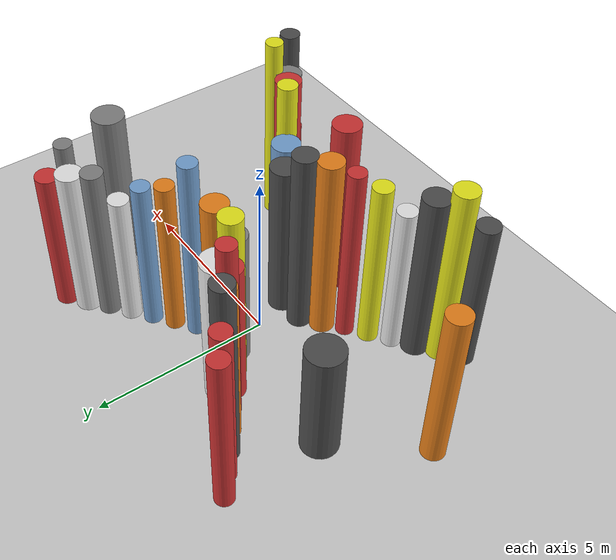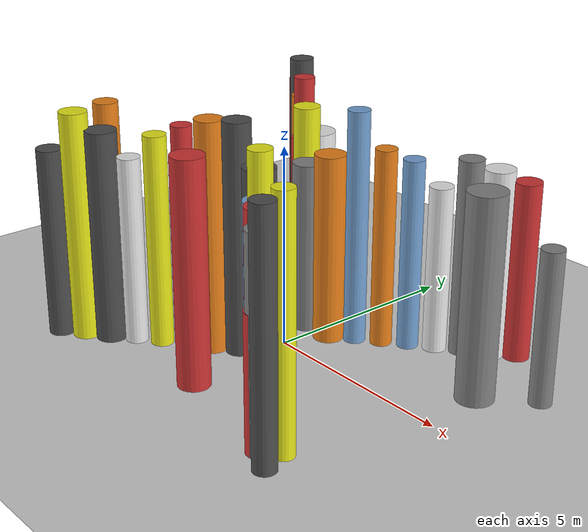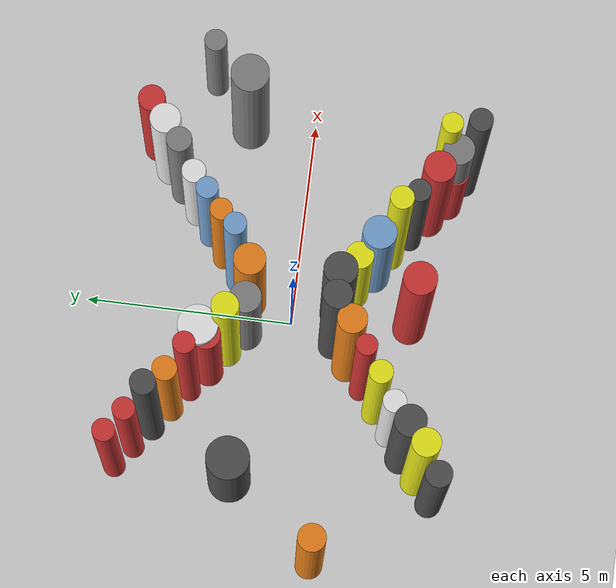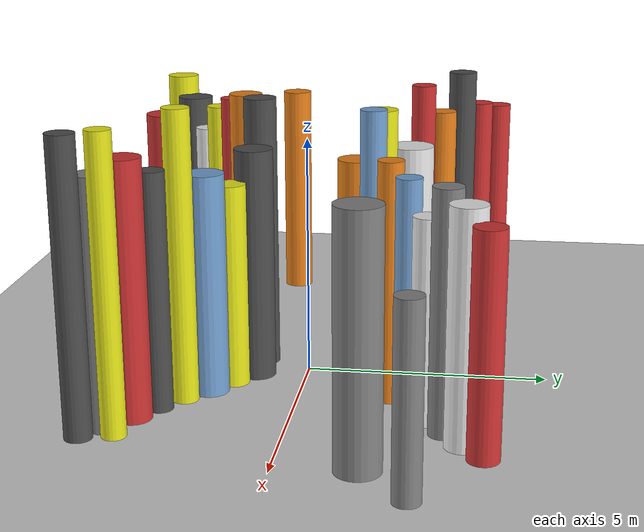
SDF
<?xml version='1.0'?>
<sdf version='1.6'>
  <world name='routeA_rl_v1__dense_recovery__rl_test__bottleneck_corridor__000031'>
    <!-- Sun light -->
    <light name='sun' type='directional'>
      <cast_shadows>1</cast_shadows>
      <pose>0 0 10 0 0 0</pose>
      <diffuse>0.8 0.8 0.8 1</diffuse>
      <specular>0.2 0.2 0.2 1</specular>
      <attenuation>
        <range>1000</range>
        <constant>0.9</constant>
        <linear>0.01</linear>
        <quadratic>0.001</quadratic>
      </attenuation>
      <direction>-0.5 0.1 -0.9</direction>
    </light>

    <!-- Ground plane -->
    <model name='ground_plane'>
      <static>1</static>
      <link name='link'>
        <collision name='collision'>
          <geometry>
            <plane>
              <normal>0 0 1</normal>
              <size>100 100</size>
            </plane>
          </geometry>
          <surface>
            <contact>
              <collide_bitmask>65535</collide_bitmask>
              <ode/>
            </contact>
            <friction>
              <ode>
                <mu>100</mu>
                <mu2>50</mu2>
              </ode>
              <torsional><ode/></torsional>
            </friction>
            <bounce/>
          </surface>
          <max_contacts>10</max_contacts>
        </collision>
        <visual name='visual'>
          <cast_shadows>0</cast_shadows>
          <geometry>
            <plane>
              <normal>0 0 1</normal>
              <size>100 100</size>
            </plane>
          </geometry>
          <material>
            <script>
              <uri>file://media/materials/scripts/gazebo.material</uri>
              <n>Gazebo/Grey</n>
            </script>
          </material>
        </visual>
      </link>
    </model>

    <!-- Environment -->
    <magnetic_field>6e-06 2.3e-05 -4.2e-05</magnetic_field>
    <atmosphere type='adiabatic'/>
    <physics name='default_physics' default='0' type='ode'>
      <gravity>0 0 -9.8</gravity>
      <max_step_size>0.004</max_step_size>
      <real_time_factor>1</real_time_factor>
      <real_time_update_rate>250</real_time_update_rate>
    </physics>
    <scene>
      <ambient>0.4 0.4 0.4 1</ambient>
      <background>0.7 0.7 0.7 1</background>
      <shadows>1</shadows>
    </scene>
    <wind/>
    <spherical_coordinates>
      <surface_model>EARTH_WGS84</surface_model>
      <latitude_deg>0</latitude_deg>
      <longitude_deg>0</longitude_deg>
      <elevation>0</elevation>
      <heading_deg>0</heading_deg>
    </spherical_coordinates>

    <!-- ============ OBSTACLES (40) ============ -->
    <model name='funnel_l_0'>
      <static>1</static>
      <link name='link'>
        <visual name='visual'>
          <geometry>
            <cylinder>
              <radius>0.3173</radius>
              <length>4.7368</length>
            </cylinder>
          </geometry>
          <material>
            <script>
              <n>Gazebo/DarkGrey</n>
              <uri>file://media/materials/scripts/gazebo.material</uri>
            </script>
            <ambient>0.3 0.3 0.3 1</ambient>
          </material>
        </visual>
        <collision name='collision'>
          <geometry>
            <cylinder>
              <radius>0.3173</radius>
              <length>4.7368</length>
            </cylinder>
          </geometry>
          <max_contacts>10</max_contacts>
          <surface>
            <contact><ode/></contact>
            <bounce/>
            <friction>
              <ode><mu>1</mu><mu2>1</mu2></ode>
              <torsional><ode/></torsional>
            </friction>
          </surface>
        </collision>
      </link>
      <pose>-4.0000 -3.8000 2.3684 0 0 0.0000</pose>
    </model>

    <model name='funnel_r_0'>
      <static>1</static>
      <link name='link'>
        <visual name='visual'>
          <geometry>
            <cylinder>
              <radius>0.2687</radius>
              <length>5.0687</length>
            </cylinder>
          </geometry>
          <material>
            <script>
              <n>Gazebo/Red</n>
              <uri>file://media/materials/scripts/gazebo.material</uri>
            </script>
            <ambient>0.8 0.2 0.2 1</ambient>
          </material>
        </visual>
        <collision name='collision'>
          <geometry>
            <cylinder>
              <radius>0.2687</radius>
              <length>5.0687</length>
            </cylinder>
          </geometry>
          <max_contacts>10</max_contacts>
          <surface>
            <contact><ode/></contact>
            <bounce/>
            <friction>
              <ode><mu>1</mu><mu2>1</mu2></ode>
              <torsional><ode/></torsional>
            </friction>
          </surface>
        </collision>
      </link>
      <pose>-4.0000 3.8000 2.5344 0 0 0.0000</pose>
    </model>

    <model name='funnel_l_1'>
      <static>1</static>
      <link name='link'>
        <visual name='visual'>
          <geometry>
            <cylinder>
              <radius>0.3373</radius>
              <length>5.6789</length>
            </cylinder>
          </geometry>
          <material>
            <script>
              <n>Gazebo/Yellow</n>
              <uri>file://media/materials/scripts/gazebo.material</uri>
            </script>
            <ambient>0.9 0.9 0.1 1</ambient>
          </material>
        </visual>
        <collision name='collision'>
          <geometry>
            <cylinder>
              <radius>0.3373</radius>
              <length>5.6789</length>
            </cylinder>
          </geometry>
          <max_contacts>10</max_contacts>
          <surface>
            <contact><ode/></contact>
            <bounce/>
            <friction>
              <ode><mu>1</mu><mu2>1</mu2></ode>
              <torsional><ode/></torsional>
            </friction>
          </surface>
        </collision>
      </link>
      <pose>-3.4857 -3.4071 2.8394 0 0 0.0000</pose>
    </model>

    <model name='funnel_r_1'>
      <static>1</static>
      <link name='link'>
        <visual name='visual'>
          <geometry>
            <cylinder>
              <radius>0.2662</radius>
              <length>5.1972</length>
            </cylinder>
          </geometry>
          <material>
            <script>
              <n>Gazebo/Red</n>
              <uri>file://media/materials/scripts/gazebo.material</uri>
            </script>
            <ambient>0.8 0.2 0.2 1</ambient>
          </material>
        </visual>
        <collision name='collision'>
          <geometry>
            <cylinder>
              <radius>0.2662</radius>
              <length>5.1972</length>
            </cylinder>
          </geometry>
          <max_contacts>10</max_contacts>
          <surface>
            <contact><ode/></contact>
            <bounce/>
            <friction>
              <ode><mu>1</mu><mu2>1</mu2></ode>
              <torsional><ode/></torsional>
            </friction>
          </surface>
        </collision>
      </link>
      <pose>-3.4857 3.4071 2.5986 0 0 0.0000</pose>
    </model>

    <model name='funnel_l_2'>
      <static>1</static>
      <link name='link'>
        <visual name='visual'>
          <geometry>
            <cylinder>
              <radius>0.3778</radius>
              <length>5.2815</length>
            </cylinder>
          </geometry>
          <material>
            <script>
              <n>Gazebo/DarkGrey</n>
              <uri>file://media/materials/scripts/gazebo.material</uri>
            </script>
            <ambient>0.3 0.3 0.3 1</ambient>
          </material>
        </visual>
        <collision name='collision'>
          <geometry>
            <cylinder>
              <radius>0.3778</radius>
              <length>5.2815</length>
            </cylinder>
          </geometry>
          <max_contacts>10</max_contacts>
          <surface>
            <contact><ode/></contact>
            <bounce/>
            <friction>
              <ode><mu>1</mu><mu2>1</mu2></ode>
              <torsional><ode/></torsional>
            </friction>
          </surface>
        </collision>
      </link>
      <pose>-2.9714 -3.0143 2.6408 0 0 0.0000</pose>
    </model>

    <model name='funnel_r_2'>
      <static>1</static>
      <link name='link'>
        <visual name='visual'>
          <geometry>
            <cylinder>
              <radius>0.2979</radius>
              <length>5.9547</length>
            </cylinder>
          </geometry>
          <material>
            <script>
              <n>Gazebo/DarkGrey</n>
              <uri>file://media/materials/scripts/gazebo.material</uri>
            </script>
            <ambient>0.3 0.3 0.3 1</ambient>
          </material>
        </visual>
        <collision name='collision'>
          <geometry>
            <cylinder>
              <radius>0.2979</radius>
              <length>5.9547</length>
            </cylinder>
          </geometry>
          <max_contacts>10</max_contacts>
          <surface>
            <contact><ode/></contact>
            <bounce/>
            <friction>
              <ode><mu>1</mu><mu2>1</mu2></ode>
              <torsional><ode/></torsional>
            </friction>
          </surface>
        </collision>
      </link>
      <pose>-2.9714 3.0143 2.9774 0 0 0.0000</pose>
    </model>

    <model name='funnel_l_3'>
      <static>1</static>
      <link name='link'>
        <visual name='visual'>
          <geometry>
            <cylinder>
              <radius>0.2755</radius>
              <length>4.6837</length>
            </cylinder>
          </geometry>
          <material>
            <script>
              <n>Gazebo/White</n>
              <uri>file://media/materials/scripts/gazebo.material</uri>
            </script>
            <ambient>0.9 0.9 0.9 1</ambient>
          </material>
        </visual>
        <collision name='collision'>
          <geometry>
            <cylinder>
              <radius>0.2755</radius>
              <length>4.6837</length>
            </cylinder>
          </geometry>
          <max_contacts>10</max_contacts>
          <surface>
            <contact><ode/></contact>
            <bounce/>
            <friction>
              <ode><mu>1</mu><mu2>1</mu2></ode>
              <torsional><ode/></torsional>
            </friction>
          </surface>
        </collision>
      </link>
      <pose>-2.4571 -2.6214 2.3418 0 0 0.0000</pose>
    </model>

    <model name='funnel_r_3'>
      <static>1</static>
      <link name='link'>
        <visual name='visual'>
          <geometry>
            <cylinder>
              <radius>0.2898</radius>
              <length>5.1768</length>
            </cylinder>
          </geometry>
          <material>
            <script>
              <n>Gazebo/Orange</n>
              <uri>file://media/materials/scripts/gazebo.material</uri>
            </script>
            <ambient>0.9 0.5 0.1 1</ambient>
          </material>
        </visual>
        <collision name='collision'>
          <geometry>
            <cylinder>
              <radius>0.2898</radius>
              <length>5.1768</length>
            </cylinder>
          </geometry>
          <max_contacts>10</max_contacts>
          <surface>
            <contact><ode/></contact>
            <bounce/>
            <friction>
              <ode><mu>1</mu><mu2>1</mu2></ode>
              <torsional><ode/></torsional>
            </friction>
          </surface>
        </collision>
      </link>
      <pose>-2.4571 2.6214 2.5884 0 0 0.0000</pose>
    </model>

    <model name='funnel_l_4'>
      <static>1</static>
      <link name='link'>
        <visual name='visual'>
          <geometry>
            <cylinder>
              <radius>0.2788</radius>
              <length>5.2720</length>
            </cylinder>
          </geometry>
          <material>
            <script>
              <n>Gazebo/Yellow</n>
              <uri>file://media/materials/scripts/gazebo.material</uri>
            </script>
            <ambient>0.9 0.9 0.1 1</ambient>
          </material>
        </visual>
        <collision name='collision'>
          <geometry>
            <cylinder>
              <radius>0.2788</radius>
              <length>5.2720</length>
            </cylinder>
          </geometry>
          <max_contacts>10</max_contacts>
          <surface>
            <contact><ode/></contact>
            <bounce/>
            <friction>
              <ode><mu>1</mu><mu2>1</mu2></ode>
              <torsional><ode/></torsional>
            </friction>
          </surface>
        </collision>
      </link>
      <pose>-1.9429 -2.2286 2.6360 0 0 0.0000</pose>
    </model>

    <model name='funnel_r_4'>
      <static>1</static>
      <link name='link'>
        <visual name='visual'>
          <geometry>
            <cylinder>
              <radius>0.2578</radius>
              <length>5.8225</length>
            </cylinder>
          </geometry>
          <material>
            <script>
              <n>Gazebo/Red</n>
              <uri>file://media/materials/scripts/gazebo.material</uri>
            </script>
            <ambient>0.8 0.2 0.2 1</ambient>
          </material>
        </visual>
        <collision name='collision'>
          <geometry>
            <cylinder>
              <radius>0.2578</radius>
              <length>5.8225</length>
            </cylinder>
          </geometry>
          <max_contacts>10</max_contacts>
          <surface>
            <contact><ode/></contact>
            <bounce/>
            <friction>
              <ode><mu>1</mu><mu2>1</mu2></ode>
              <torsional><ode/></torsional>
            </friction>
          </surface>
        </collision>
      </link>
      <pose>-1.9429 2.2286 2.9113 0 0 0.0000</pose>
    </model>

    <model name='funnel_l_5'>
      <static>1</static>
      <link name='link'>
        <visual name='visual'>
          <geometry>
            <cylinder>
              <radius>0.2502</radius>
              <length>5.5478</length>
            </cylinder>
          </geometry>
          <material>
            <script>
              <n>Gazebo/Red</n>
              <uri>file://media/materials/scripts/gazebo.material</uri>
            </script>
            <ambient>0.8 0.2 0.2 1</ambient>
          </material>
        </visual>
        <collision name='collision'>
          <geometry>
            <cylinder>
              <radius>0.2502</radius>
              <length>5.5478</length>
            </cylinder>
          </geometry>
          <max_contacts>10</max_contacts>
          <surface>
            <contact><ode/></contact>
            <bounce/>
            <friction>
              <ode><mu>1</mu><mu2>1</mu2></ode>
              <torsional><ode/></torsional>
            </friction>
          </surface>
        </collision>
      </link>
      <pose>-1.4286 -1.8357 2.7739 0 0 0.0000</pose>
    </model>

    <model name='funnel_r_5'>
      <static>1</static>
      <link name='link'>
        <visual name='visual'>
          <geometry>
            <cylinder>
              <radius>0.3490</radius>
              <length>4.4925</length>
            </cylinder>
          </geometry>
          <material>
            <script>
              <n>Gazebo/Red</n>
              <uri>file://media/materials/scripts/gazebo.material</uri>
            </script>
            <ambient>0.8 0.2 0.2 1</ambient>
          </material>
        </visual>
        <collision name='collision'>
          <geometry>
            <cylinder>
              <radius>0.3490</radius>
              <length>4.4925</length>
            </cylinder>
          </geometry>
          <max_contacts>10</max_contacts>
          <surface>
            <contact><ode/></contact>
            <bounce/>
            <friction>
              <ode><mu>1</mu><mu2>1</mu2></ode>
              <torsional><ode/></torsional>
            </friction>
          </surface>
        </collision>
      </link>
      <pose>-1.4286 1.8357 2.2462 0 0 0.0000</pose>
    </model>

    <model name='funnel_l_6'>
      <static>1</static>
      <link name='link'>
        <visual name='visual'>
          <geometry>
            <cylinder>
              <radius>0.3455</radius>
              <length>5.7369</length>
            </cylinder>
          </geometry>
          <material>
            <script>
              <n>Gazebo/Orange</n>
              <uri>file://media/materials/scripts/gazebo.material</uri>
            </script>
            <ambient>0.9 0.5 0.1 1</ambient>
          </material>
        </visual>
        <collision name='collision'>
          <geometry>
            <cylinder>
              <radius>0.3455</radius>
              <length>5.7369</length>
            </cylinder>
          </geometry>
          <max_contacts>10</max_contacts>
          <surface>
            <contact><ode/></contact>
            <bounce/>
            <friction>
              <ode><mu>1</mu><mu2>1</mu2></ode>
              <torsional><ode/></torsional>
            </friction>
          </surface>
        </collision>
      </link>
      <pose>-0.9143 -1.4429 2.8684 0 0 0.0000</pose>
    </model>

    <model name='funnel_r_6'>
      <static>1</static>
      <link name='link'>
        <visual name='visual'>
          <geometry>
            <cylinder>
              <radius>0.3223</radius>
              <length>5.4712</length>
            </cylinder>
          </geometry>
          <material>
            <script>
              <n>Gazebo/Yellow</n>
              <uri>file://media/materials/scripts/gazebo.material</uri>
            </script>
            <ambient>0.9 0.9 0.1 1</ambient>
          </material>
        </visual>
        <collision name='collision'>
          <geometry>
            <cylinder>
              <radius>0.3223</radius>
              <length>5.4712</length>
            </cylinder>
          </geometry>
          <max_contacts>10</max_contacts>
          <surface>
            <contact><ode/></contact>
            <bounce/>
            <friction>
              <ode><mu>1</mu><mu2>1</mu2></ode>
              <torsional><ode/></torsional>
            </friction>
          </surface>
        </collision>
      </link>
      <pose>-0.9143 1.4429 2.7356 0 0 0.0000</pose>
    </model>

    <model name='funnel_l_7'>
      <static>1</static>
      <link name='link'>
        <visual name='visual'>
          <geometry>
            <cylinder>
              <radius>0.3419</radius>
              <length>5.7578</length>
            </cylinder>
          </geometry>
          <material>
            <script>
              <n>Gazebo/DarkGrey</n>
              <uri>file://media/materials/scripts/gazebo.material</uri>
            </script>
            <ambient>0.3 0.3 0.3 1</ambient>
          </material>
        </visual>
        <collision name='collision'>
          <geometry>
            <cylinder>
              <radius>0.3419</radius>
              <length>5.7578</length>
            </cylinder>
          </geometry>
          <max_contacts>10</max_contacts>
          <surface>
            <contact><ode/></contact>
            <bounce/>
            <friction>
              <ode><mu>1</mu><mu2>1</mu2></ode>
              <torsional><ode/></torsional>
            </friction>
          </surface>
        </collision>
      </link>
      <pose>-0.4000 -1.0500 2.8789 0 0 0.0000</pose>
    </model>

    <model name='funnel_r_7'>
      <static>1</static>
      <link name='link'>
        <visual name='visual'>
          <geometry>
            <cylinder>
              <radius>0.3776</radius>
              <length>4.2890</length>
            </cylinder>
          </geometry>
          <material>
            <script>
              <n>Gazebo/Grey</n>
              <uri>file://media/materials/scripts/gazebo.material</uri>
            </script>
            <ambient>0.5 0.5 0.5 1</ambient>
          </material>
        </visual>
        <collision name='collision'>
          <geometry>
            <cylinder>
              <radius>0.3776</radius>
              <length>4.2890</length>
            </cylinder>
          </geometry>
          <max_contacts>10</max_contacts>
          <surface>
            <contact><ode/></contact>
            <bounce/>
            <friction>
              <ode><mu>1</mu><mu2>1</mu2></ode>
              <torsional><ode/></torsional>
            </friction>
          </surface>
        </collision>
      </link>
      <pose>-0.4000 1.0500 2.1445 0 0 0.0000</pose>
    </model>

    <model name='funnel_out_l_0'>
      <static>1</static>
      <link name='link'>
        <visual name='visual'>
          <geometry>
            <cylinder>
              <radius>0.3969</radius>
              <length>4.8648</length>
            </cylinder>
          </geometry>
          <material>
            <script>
              <n>Gazebo/DarkGrey</n>
              <uri>file://media/materials/scripts/gazebo.material</uri>
            </script>
            <ambient>0.3 0.3 0.3 1</ambient>
          </material>
        </visual>
        <collision name='collision'>
          <geometry>
            <cylinder>
              <radius>0.3969</radius>
              <length>4.8648</length>
            </cylinder>
          </geometry>
          <max_contacts>10</max_contacts>
          <surface>
            <contact><ode/></contact>
            <bounce/>
            <friction>
              <ode><mu>1</mu><mu2>1</mu2></ode>
              <torsional><ode/></torsional>
            </friction>
          </surface>
        </collision>
      </link>
      <pose>0.4000 -1.0500 2.4324 0 0 0.0000</pose>
    </model>

    <model name='funnel_out_r_0'>
      <static>1</static>
      <link name='link'>
        <visual name='visual'>
          <geometry>
            <cylinder>
              <radius>0.3787</radius>
              <length>4.7091</length>
            </cylinder>
          </geometry>
          <material>
            <script>
              <n>Gazebo/Orange</n>
              <uri>file://media/materials/scripts/gazebo.material</uri>
            </script>
            <ambient>0.9 0.5 0.1 1</ambient>
          </material>
        </visual>
        <collision name='collision'>
          <geometry>
            <cylinder>
              <radius>0.3787</radius>
              <length>4.7091</length>
            </cylinder>
          </geometry>
          <max_contacts>10</max_contacts>
          <surface>
            <contact><ode/></contact>
            <bounce/>
            <friction>
              <ode><mu>1</mu><mu2>1</mu2></ode>
              <torsional><ode/></torsional>
            </friction>
          </surface>
        </collision>
      </link>
      <pose>0.4000 1.0500 2.3546 0 0 0.0000</pose>
    </model>

    <model name='funnel_out_l_1'>
      <static>1</static>
      <link name='link'>
        <visual name='visual'>
          <geometry>
            <cylinder>
              <radius>0.3271</radius>
              <length>4.2446</length>
            </cylinder>
          </geometry>
          <material>
            <script>
              <n>Gazebo/Yellow</n>
              <uri>file://media/materials/scripts/gazebo.material</uri>
            </script>
            <ambient>0.9 0.9 0.1 1</ambient>
          </material>
        </visual>
        <collision name='collision'>
          <geometry>
            <cylinder>
              <radius>0.3271</radius>
              <length>4.2446</length>
            </cylinder>
          </geometry>
          <max_contacts>10</max_contacts>
          <surface>
            <contact><ode/></contact>
            <bounce/>
            <friction>
              <ode><mu>1</mu><mu2>1</mu2></ode>
              <torsional><ode/></torsional>
            </friction>
          </surface>
        </collision>
      </link>
      <pose>0.9143 -1.4429 2.1223 0 0 0.0000</pose>
    </model>

    <model name='funnel_out_r_1'>
      <static>1</static>
      <link name='link'>
        <visual name='visual'>
          <geometry>
            <cylinder>
              <radius>0.2667</radius>
              <length>5.8137</length>
            </cylinder>
          </geometry>
          <material>
            <script>
              <n>Gazebo/Blue</n>
              <uri>file://media/materials/scripts/gazebo.material</uri>
            </script>
            <ambient>0.447 0.624 0.812 1</ambient>
          </material>
        </visual>
        <collision name='collision'>
          <geometry>
            <cylinder>
              <radius>0.2667</radius>
              <length>5.8137</length>
            </cylinder>
          </geometry>
          <max_contacts>10</max_contacts>
          <surface>
            <contact><ode/></contact>
            <bounce/>
            <friction>
              <ode><mu>1</mu><mu2>1</mu2></ode>
              <torsional><ode/></torsional>
            </friction>
          </surface>
        </collision>
      </link>
      <pose>0.9143 1.4429 2.9069 0 0 0.0000</pose>
    </model>

    <model name='funnel_out_l_2'>
      <static>1</static>
      <link name='link'>
        <visual name='visual'>
          <geometry>
            <cylinder>
              <radius>0.3986</radius>
              <length>4.5778</length>
            </cylinder>
          </geometry>
          <material>
            <script>
              <n>Gazebo/Blue</n>
              <uri>file://media/materials/scripts/gazebo.material</uri>
            </script>
            <ambient>0.447 0.624 0.812 1</ambient>
          </material>
        </visual>
        <collision name='collision'>
          <geometry>
            <cylinder>
              <radius>0.3986</radius>
              <length>4.5778</length>
            </cylinder>
          </geometry>
          <max_contacts>10</max_contacts>
          <surface>
            <contact><ode/></contact>
            <bounce/>
            <friction>
              <ode><mu>1</mu><mu2>1</mu2></ode>
              <torsional><ode/></torsional>
            </friction>
          </surface>
        </collision>
      </link>
      <pose>1.4286 -1.8357 2.2889 0 0 0.0000</pose>
    </model>

    <model name='funnel_out_r_2'>
      <static>1</static>
      <link name='link'>
        <visual name='visual'>
          <geometry>
            <cylinder>
              <radius>0.2638</radius>
              <length>4.9398</length>
            </cylinder>
          </geometry>
          <material>
            <script>
              <n>Gazebo/Orange</n>
              <uri>file://media/materials/scripts/gazebo.material</uri>
            </script>
            <ambient>0.9 0.5 0.1 1</ambient>
          </material>
        </visual>
        <collision name='collision'>
          <geometry>
            <cylinder>
              <radius>0.2638</radius>
              <length>4.9398</length>
            </cylinder>
          </geometry>
          <max_contacts>10</max_contacts>
          <surface>
            <contact><ode/></contact>
            <bounce/>
            <friction>
              <ode><mu>1</mu><mu2>1</mu2></ode>
              <torsional><ode/></torsional>
            </friction>
          </surface>
        </collision>
      </link>
      <pose>1.4286 1.8357 2.4699 0 0 0.0000</pose>
    </model>

    <model name='funnel_out_l_3'>
      <static>1</static>
      <link name='link'>
        <visual name='visual'>
          <geometry>
            <cylinder>
              <radius>0.2747</radius>
              <length>5.9616</length>
            </cylinder>
          </geometry>
          <material>
            <script>
              <n>Gazebo/Yellow</n>
              <uri>file://media/materials/scripts/gazebo.material</uri>
            </script>
            <ambient>0.9 0.9 0.1 1</ambient>
          </material>
        </visual>
        <collision name='collision'>
          <geometry>
            <cylinder>
              <radius>0.2747</radius>
              <length>5.9616</length>
            </cylinder>
          </geometry>
          <max_contacts>10</max_contacts>
          <surface>
            <contact><ode/></contact>
            <bounce/>
            <friction>
              <ode><mu>1</mu><mu2>1</mu2></ode>
              <torsional><ode/></torsional>
            </friction>
          </surface>
        </collision>
      </link>
      <pose>1.9429 -2.2286 2.9808 0 0 0.0000</pose>
    </model>

    <model name='funnel_out_r_3'>
      <static>1</static>
      <link name='link'>
        <visual name='visual'>
          <geometry>
            <cylinder>
              <radius>0.2607</radius>
              <length>4.7391</length>
            </cylinder>
          </geometry>
          <material>
            <script>
              <n>Gazebo/Blue</n>
              <uri>file://media/materials/scripts/gazebo.material</uri>
            </script>
            <ambient>0.447 0.624 0.812 1</ambient>
          </material>
        </visual>
        <collision name='collision'>
          <geometry>
            <cylinder>
              <radius>0.2607</radius>
              <length>4.7391</length>
            </cylinder>
          </geometry>
          <max_contacts>10</max_contacts>
          <surface>
            <contact><ode/></contact>
            <bounce/>
            <friction>
              <ode><mu>1</mu><mu2>1</mu2></ode>
              <torsional><ode/></torsional>
            </friction>
          </surface>
        </collision>
      </link>
      <pose>1.9429 2.2286 2.3696 0 0 0.0000</pose>
    </model>

    <model name='funnel_out_l_4'>
      <static>1</static>
      <link name='link'>
        <visual name='visual'>
          <geometry>
            <cylinder>
              <radius>0.2712</radius>
              <length>4.8506</length>
            </cylinder>
          </geometry>
          <material>
            <script>
              <n>Gazebo/DarkGrey</n>
              <uri>file://media/materials/scripts/gazebo.material</uri>
            </script>
            <ambient>0.3 0.3 0.3 1</ambient>
          </material>
        </visual>
        <collision name='collision'>
          <geometry>
            <cylinder>
              <radius>0.2712</radius>
              <length>4.8506</length>
            </cylinder>
          </geometry>
          <max_contacts>10</max_contacts>
          <surface>
            <contact><ode/></contact>
            <bounce/>
            <friction>
              <ode><mu>1</mu><mu2>1</mu2></ode>
              <torsional><ode/></torsional>
            </friction>
          </surface>
        </collision>
      </link>
      <pose>2.4571 -2.6214 2.4253 0 0 0.0000</pose>
    </model>

    <model name='funnel_out_r_4'>
      <static>1</static>
      <link name='link'>
        <visual name='visual'>
          <geometry>
            <cylinder>
              <radius>0.2868</radius>
              <length>4.1407</length>
            </cylinder>
          </geometry>
          <material>
            <script>
              <n>Gazebo/White</n>
              <uri>file://media/materials/scripts/gazebo.material</uri>
            </script>
            <ambient>0.9 0.9 0.9 1</ambient>
          </material>
        </visual>
        <collision name='collision'>
          <geometry>
            <cylinder>
              <radius>0.2868</radius>
              <length>4.1407</length>
            </cylinder>
          </geometry>
          <max_contacts>10</max_contacts>
          <surface>
            <contact><ode/></contact>
            <bounce/>
            <friction>
              <ode><mu>1</mu><mu2>1</mu2></ode>
              <torsional><ode/></torsional>
            </friction>
          </surface>
        </collision>
      </link>
      <pose>2.4571 2.6214 2.0703 0 0 0.0000</pose>
    </model>

    <model name='funnel_out_l_5'>
      <static>1</static>
      <link name='link'>
        <visual name='visual'>
          <geometry>
            <cylinder>
              <radius>0.3737</radius>
              <length>5.2114</length>
            </cylinder>
          </geometry>
          <material>
            <script>
              <n>Gazebo/Red</n>
              <uri>file://media/materials/scripts/gazebo.material</uri>
            </script>
            <ambient>0.8 0.2 0.2 1</ambient>
          </material>
        </visual>
        <collision name='collision'>
          <geometry>
            <cylinder>
              <radius>0.3737</radius>
              <length>5.2114</length>
            </cylinder>
          </geometry>
          <max_contacts>10</max_contacts>
          <surface>
            <contact><ode/></contact>
            <bounce/>
            <friction>
              <ode><mu>1</mu><mu2>1</mu2></ode>
              <torsional><ode/></torsional>
            </friction>
          </surface>
        </collision>
      </link>
      <pose>2.9714 -3.0143 2.6057 0 0 0.0000</pose>
    </model>

    <model name='funnel_out_r_5'>
      <static>1</static>
      <link name='link'>
        <visual name='visual'>
          <geometry>
            <cylinder>
              <radius>0.3012</radius>
              <length>4.8488</length>
            </cylinder>
          </geometry>
          <material>
            <script>
              <n>Gazebo/Grey</n>
              <uri>file://media/materials/scripts/gazebo.material</uri>
            </script>
            <ambient>0.5 0.5 0.5 1</ambient>
          </material>
        </visual>
        <collision name='collision'>
          <geometry>
            <cylinder>
              <radius>0.3012</radius>
              <length>4.8488</length>
            </cylinder>
          </geometry>
          <max_contacts>10</max_contacts>
          <surface>
            <contact><ode/></contact>
            <bounce/>
            <friction>
              <ode><mu>1</mu><mu2>1</mu2></ode>
              <torsional><ode/></torsional>
            </friction>
          </surface>
        </collision>
      </link>
      <pose>2.9714 3.0143 2.4244 0 0 0.0000</pose>
    </model>

    <model name='funnel_out_l_6'>
      <static>1</static>
      <link name='link'>
        <visual name='visual'>
          <geometry>
            <cylinder>
              <radius>0.3664</radius>
              <length>5.0074</length>
            </cylinder>
          </geometry>
          <material>
            <script>
              <n>Gazebo/Grey</n>
              <uri>file://media/materials/scripts/gazebo.material</uri>
            </script>
            <ambient>0.5 0.5 0.5 1</ambient>
          </material>
        </visual>
        <collision name='collision'>
          <geometry>
            <cylinder>
              <radius>0.3664</radius>
              <length>5.0074</length>
            </cylinder>
          </geometry>
          <max_contacts>10</max_contacts>
          <surface>
            <contact><ode/></contact>
            <bounce/>
            <friction>
              <ode><mu>1</mu><mu2>1</mu2></ode>
              <torsional><ode/></torsional>
            </friction>
          </surface>
        </collision>
      </link>
      <pose>3.4857 -3.4071 2.5037 0 0 0.0000</pose>
    </model>

    <model name='funnel_out_r_6'>
      <static>1</static>
      <link name='link'>
        <visual name='visual'>
          <geometry>
            <cylinder>
              <radius>0.3626</radius>
              <length>4.6645</length>
            </cylinder>
          </geometry>
          <material>
            <script>
              <n>Gazebo/White</n>
              <uri>file://media/materials/scripts/gazebo.material</uri>
            </script>
            <ambient>0.9 0.9 0.9 1</ambient>
          </material>
        </visual>
        <collision name='collision'>
          <geometry>
            <cylinder>
              <radius>0.3626</radius>
              <length>4.6645</length>
            </cylinder>
          </geometry>
          <max_contacts>10</max_contacts>
          <surface>
            <contact><ode/></contact>
            <bounce/>
            <friction>
              <ode><mu>1</mu><mu2>1</mu2></ode>
              <torsional><ode/></torsional>
            </friction>
          </surface>
        </collision>
      </link>
      <pose>3.4857 3.4071 2.3322 0 0 0.0000</pose>
    </model>

    <model name='funnel_out_l_7'>
      <static>1</static>
      <link name='link'>
        <visual name='visual'>
          <geometry>
            <cylinder>
              <radius>0.2770</radius>
              <length>5.8492</length>
            </cylinder>
          </geometry>
          <material>
            <script>
              <n>Gazebo/DarkGrey</n>
              <uri>file://media/materials/scripts/gazebo.material</uri>
            </script>
            <ambient>0.3 0.3 0.3 1</ambient>
          </material>
        </visual>
        <collision name='collision'>
          <geometry>
            <cylinder>
              <radius>0.2770</radius>
              <length>5.8492</length>
            </cylinder>
          </geometry>
          <max_contacts>10</max_contacts>
          <surface>
            <contact><ode/></contact>
            <bounce/>
            <friction>
              <ode><mu>1</mu><mu2>1</mu2></ode>
              <torsional><ode/></torsional>
            </friction>
          </surface>
        </collision>
      </link>
      <pose>4.0000 -3.8000 2.9246 0 0 0.0000</pose>
    </model>

    <model name='funnel_out_r_7'>
      <static>1</static>
      <link name='link'>
        <visual name='visual'>
          <geometry>
            <cylinder>
              <radius>0.3180</radius>
              <length>4.4094</length>
            </cylinder>
          </geometry>
          <material>
            <script>
              <n>Gazebo/Red</n>
              <uri>file://media/materials/scripts/gazebo.material</uri>
            </script>
            <ambient>0.8 0.2 0.2 1</ambient>
          </material>
        </visual>
        <collision name='collision'>
          <geometry>
            <cylinder>
              <radius>0.3180</radius>
              <length>4.4094</length>
            </cylinder>
          </geometry>
          <max_contacts>10</max_contacts>
          <surface>
            <contact><ode/></contact>
            <bounce/>
            <friction>
              <ode><mu>1</mu><mu2>1</mu2></ode>
              <torsional><ode/></torsional>
            </friction>
          </surface>
        </collision>
      </link>
      <pose>4.0000 3.8000 2.2047 0 0 0.0000</pose>
    </model>

    <model name='bn_scatter_0'>
      <static>1</static>
      <link name='link'>
        <visual name='visual'>
          <geometry>
            <cylinder>
              <radius>0.2490</radius>
              <length>5.8995</length>
            </cylinder>
          </geometry>
          <material>
            <script>
              <n>Gazebo/Yellow</n>
              <uri>file://media/materials/scripts/gazebo.material</uri>
            </script>
            <ambient>0.9 0.9 0.1 1</ambient>
          </material>
        </visual>
        <collision name='collision'>
          <geometry>
            <cylinder>
              <radius>0.2490</radius>
              <length>5.8995</length>
            </cylinder>
          </geometry>
          <max_contacts>10</max_contacts>
          <surface>
            <contact><ode/></contact>
            <bounce/>
            <friction>
              <ode><mu>1</mu><mu2>1</mu2></ode>
              <torsional><ode/></torsional>
            </friction>
          </surface>
        </collision>
      </link>
      <pose>3.8329 -3.1598 2.9497 0 0 0.0000</pose>
    </model>

    <model name='bn_scatter_1'>
      <static>1</static>
      <link name='link'>
        <visual name='visual'>
          <geometry>
            <cylinder>
              <radius>0.3357</radius>
              <length>3.2544</length>
            </cylinder>
          </geometry>
          <material>
            <script>
              <n>Gazebo/Red</n>
              <uri>file://media/materials/scripts/gazebo.material</uri>
            </script>
            <ambient>0.8 0.2 0.2 1</ambient>
          </material>
        </visual>
        <collision name='collision'>
          <geometry>
            <cylinder>
              <radius>0.3357</radius>
              <length>3.2544</length>
            </cylinder>
          </geometry>
          <max_contacts>10</max_contacts>
          <surface>
            <contact><ode/></contact>
            <bounce/>
            <friction>
              <ode><mu>1</mu><mu2>1</mu2></ode>
              <torsional><ode/></torsional>
            </friction>
          </surface>
        </collision>
      </link>
      <pose>3.4218 -3.4441 1.6272 0 0 0.0000</pose>
    </model>

    <model name='bn_scatter_2'>
      <static>1</static>
      <link name='link'>
        <visual name='visual'>
          <geometry>
            <cylinder>
              <radius>0.4710</radius>
              <length>4.6486</length>
            </cylinder>
          </geometry>
          <material>
            <script>
              <n>Gazebo/White</n>
              <uri>file://media/materials/scripts/gazebo.material</uri>
            </script>
            <ambient>0.9 0.9 0.9 1</ambient>
          </material>
        </visual>
        <collision name='collision'>
          <geometry>
            <cylinder>
              <radius>0.4710</radius>
              <length>4.6486</length>
            </cylinder>
          </geometry>
          <max_contacts>10</max_contacts>
          <surface>
            <contact><ode/></contact>
            <bounce/>
            <friction>
              <ode><mu>1</mu><mu2>1</mu2></ode>
              <torsional><ode/></torsional>
            </friction>
          </surface>
        </collision>
      </link>
      <pose>-1.2544 2.0342 2.3243 0 0 0.0000</pose>
    </model>

    <model name='bn_scatter_3'>
      <static>1</static>
      <link name='link'>
        <visual name='visual'>
          <geometry>
            <cylinder>
              <radius>0.3965</radius>
              <length>5.5021</length>
            </cylinder>
          </geometry>
          <material>
            <script>
              <n>Gazebo/Red</n>
              <uri>file://media/materials/scripts/gazebo.material</uri>
            </script>
            <ambient>0.8 0.2 0.2 1</ambient>
          </material>
        </visual>
        <collision name='collision'>
          <geometry>
            <cylinder>
              <radius>0.3965</radius>
              <length>5.5021</length>
            </cylinder>
          </geometry>
          <max_contacts>10</max_contacts>
          <surface>
            <contact><ode/></contact>
            <bounce/>
            <friction>
              <ode><mu>1</mu><mu2>1</mu2></ode>
              <torsional><ode/></torsional>
            </friction>
          </surface>
        </collision>
      </link>
      <pose>0.2466 -2.8542 2.7510 0 0 0.0000</pose>
    </model>

    <model name='bn_scatter_4'>
      <static>1</static>
      <link name='link'>
        <visual name='visual'>
          <geometry>
            <cylinder>
              <radius>0.5146</radius>
              <length>3.5075</length>
            </cylinder>
          </geometry>
          <material>
            <script>
              <n>Gazebo/DarkGrey</n>
              <uri>file://media/materials/scripts/gazebo.material</uri>
            </script>
            <ambient>0.3 0.3 0.3 1</ambient>
          </material>
        </visual>
        <collision name='collision'>
          <geometry>
            <cylinder>
              <radius>0.5146</radius>
              <length>3.5075</length>
            </cylinder>
          </geometry>
          <max_contacts>10</max_contacts>
          <surface>
            <contact><ode/></contact>
            <bounce/>
            <friction>
              <ode><mu>1</mu><mu2>1</mu2></ode>
              <torsional><ode/></torsional>
            </friction>
          </surface>
        </collision>
      </link>
      <pose>-4.0315 1.0057 1.7537 0 0 0.0000</pose>
    </model>

    <model name='bn_scatter_5'>
      <static>1</static>
      <link name='link'>
        <visual name='visual'>
          <geometry>
            <cylinder>
              <radius>0.4542</radius>
              <length>4.9358</length>
            </cylinder>
          </geometry>
          <material>
            <script>
              <n>Gazebo/Grey</n>
              <uri>file://media/materials/scripts/gazebo.material</uri>
            </script>
            <ambient>0.5 0.5 0.5 1</ambient>
          </material>
        </visual>
        <collision name='collision'>
          <geometry>
            <cylinder>
              <radius>0.4542</radius>
              <length>4.9358</length>
            </cylinder>
          </geometry>
          <max_contacts>10</max_contacts>
          <surface>
            <contact><ode/></contact>
            <bounce/>
            <friction>
              <ode><mu>1</mu><mu2>1</mu2></ode>
              <torsional><ode/></torsional>
            </friction>
          </surface>
        </collision>
      </link>
      <pose>4.7271 1.5856 2.4679 0 0 0.0000</pose>
    </model>

    <model name='bn_scatter_6'>
      <static>1</static>
      <link name='link'>
        <visual name='visual'>
          <geometry>
            <cylinder>
              <radius>0.3295</radius>
              <length>4.9461</length>
            </cylinder>
          </geometry>
          <material>
            <script>
              <n>Gazebo/Orange</n>
              <uri>file://media/materials/scripts/gazebo.material</uri>
            </script>
            <ambient>0.9 0.5 0.1 1</ambient>
          </material>
        </visual>
        <collision name='collision'>
          <geometry>
            <cylinder>
              <radius>0.3295</radius>
              <length>4.9461</length>
            </cylinder>
          </geometry>
          <max_contacts>10</max_contacts>
          <surface>
            <contact><ode/></contact>
            <bounce/>
            <friction>
              <ode><mu>1</mu><mu2>1</mu2></ode>
              <torsional><ode/></torsional>
            </friction>
          </surface>
        </collision>
      </link>
      <pose>-5.8151 -1.1382 2.4730 0 0 0.0000</pose>
    </model>

    <model name='bn_scatter_7'>
      <static>1</static>
      <link name='link'>
        <visual name='visual'>
          <geometry>
            <cylinder>
              <radius>0.2687</radius>
              <length>3.7185</length>
            </cylinder>
          </geometry>
          <material>
            <script>
              <n>Gazebo/Grey</n>
              <uri>file://media/materials/scripts/gazebo.material</uri>
            </script>
            <ambient>0.5 0.5 0.5 1</ambient>
          </material>
        </visual>
        <collision name='collision'>
          <geometry>
            <cylinder>
              <radius>0.2687</radius>
              <length>3.7185</length>
            </cylinder>
          </geometry>
          <max_contacts>10</max_contacts>
          <surface>
            <contact><ode/></contact>
            <bounce/>
            <friction>
              <ode><mu>1</mu><mu2>1</mu2></ode>
              <torsional><ode/></torsional>
            </friction>
          </surface>
        </collision>
      </link>
      <pose>5.7973 2.5446 1.8593 0 0 0.0000</pose>
    </model>

    <!-- GUI camera -->
    <gui fullscreen='0'>
      <camera name='user_camera'>
        <pose>-15 0 18 0 0.85 0.15</pose>
        <view_controller>orbit</view_controller>
        <projection_type>perspective</projection_type>
      </camera>
    </gui>
  </world>
</sdf>
